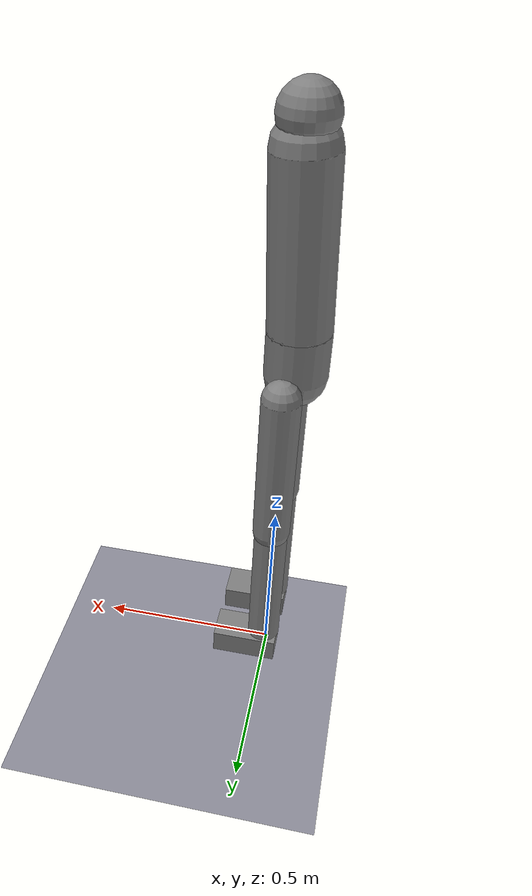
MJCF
<mujoco model="平面火柴人（站立本能训练）">
  <option timestep="0.02" gravity="0 0 -9.81" integrator="Euler"/>
  <compiler angle="degree"/>

  <worldbody>
    <geom name="地面" type="plane" size="5 5 0.1" pos="0 0 0" rgba="0.55 0.55 0.6 1"/>
    <light pos="0 4 6" dir="0 -1 -1"/>

    <body name="骨盆" pos="0 0 0.95">
      <joint name="平移X" type="slide" axis="1 0 0" damping="0.1"/>
      <joint name="平移Z" type="slide" axis="0 0 1" damping="0.1"/>
      <joint name="俯仰" type="hinge" axis="0 1 0" damping="0.05"/>
      <geom name="骨盆体" type="capsule" fromto="-0.02 0 0.02  -0.02 0 0.14" size="0.08" mass="3.5"/>

      <!-- 躯干 + 头 -->
      <body name="躯干" pos="-0.02 0 0.14">
        <geom name="躯干体" type="capsule" fromto="0 0 0  0.02 0 0.42" size="0.08" mass="5.5"/>
        <body name="头" pos="0.02 0 0.42">
          <geom name="头体" type="sphere" size="0.07" mass="1.2" pos="0 0 0.07"/>
        </body>
      </body>

      <!-- 左腿（y 偏 -0.09，和右腿并排但不重叠） -->
      <body name="左腿根" pos="0 -0.09 0">
        <joint name="左髋" type="hinge" axis="0 1 0" range="-35 75" damping="0.5"/>
        <geom name="左大腿" type="capsule" fromto="0 0 0 0 0 -0.42" size="0.05" mass="2.4"/>
        <body name="左小腿" pos="0 0 -0.42">
          <joint name="左膝" type="hinge" axis="0 1 0" range="0 145" damping="0.4"/>
          <geom name="左小腿体" type="capsule" fromto="0 0 0 0 0 -0.40" size="0.045" mass="2.0"/>
          <body name="左脚" pos="0 0 -0.40">
            <joint name="左踝" type="hinge" axis="0 1 0" range="-35 35" damping="0.3"/>
            <geom name="左脚底" type="box" size="0.09 0.05 0.035" pos="0.05 0 -0.035" mass="0.8"/>
          </body>
        </body>
      </body>

      <!-- 右腿 -->
      <body name="右腿根" pos="0 0.09 0">
        <joint name="右髋" type="hinge" axis="0 1 0" range="-35 75" damping="0.5"/>
        <geom name="右大腿" type="capsule" fromto="0 0 0 0 0 -0.42" size="0.05" mass="2.4"/>
        <body name="右小腿" pos="0 0 -0.42">
          <joint name="右膝" type="hinge" axis="0 1 0" range="0 145" damping="0.4"/>
          <geom name="右小腿体" type="capsule" fromto="0 0 0 0 0 -0.40" size="0.045" mass="2.0"/>
          <body name="右脚" pos="0 0 -0.40">
            <joint name="右踝" type="hinge" axis="0 1 0" range="-35 35" damping="0.3"/>
            <geom name="右脚底" type="box" size="0.09 0.05 0.035" pos="0.05 0 -0.035" mass="0.8"/>
          </body>
        </body>
      </body>
    </body>
  </worldbody>

  <actuator>
    <motor name="左髋肌" joint="左髋" gear="1" ctrlrange="-150 150"/>
    <motor name="左膝肌" joint="左膝" gear="1" ctrlrange="-150 150"/>
    <motor name="左踝肌" joint="左踝" gear="1" ctrlrange="-70 70"/>
    <motor name="右髋肌" joint="右髋" gear="1" ctrlrange="-150 150"/>
    <motor name="右膝肌" joint="右膝" gear="1" ctrlrange="-150 150"/>
    <motor name="右踝肌" joint="右踝" gear="1" ctrlrange="-70 70"/>
  </actuator>
</mujoco>
